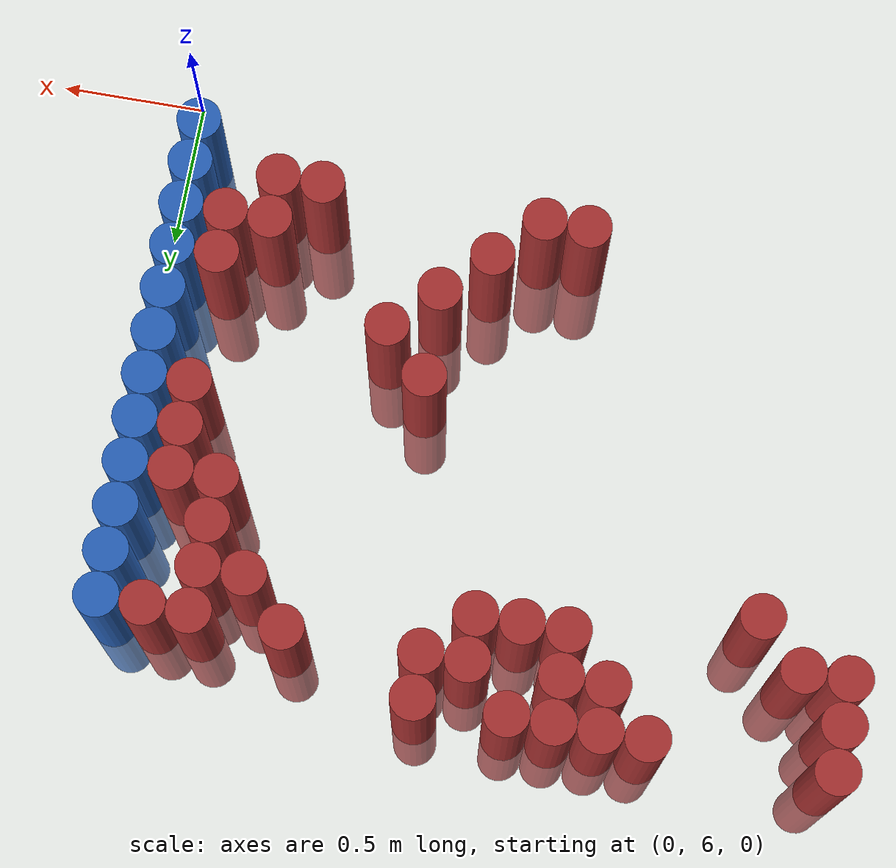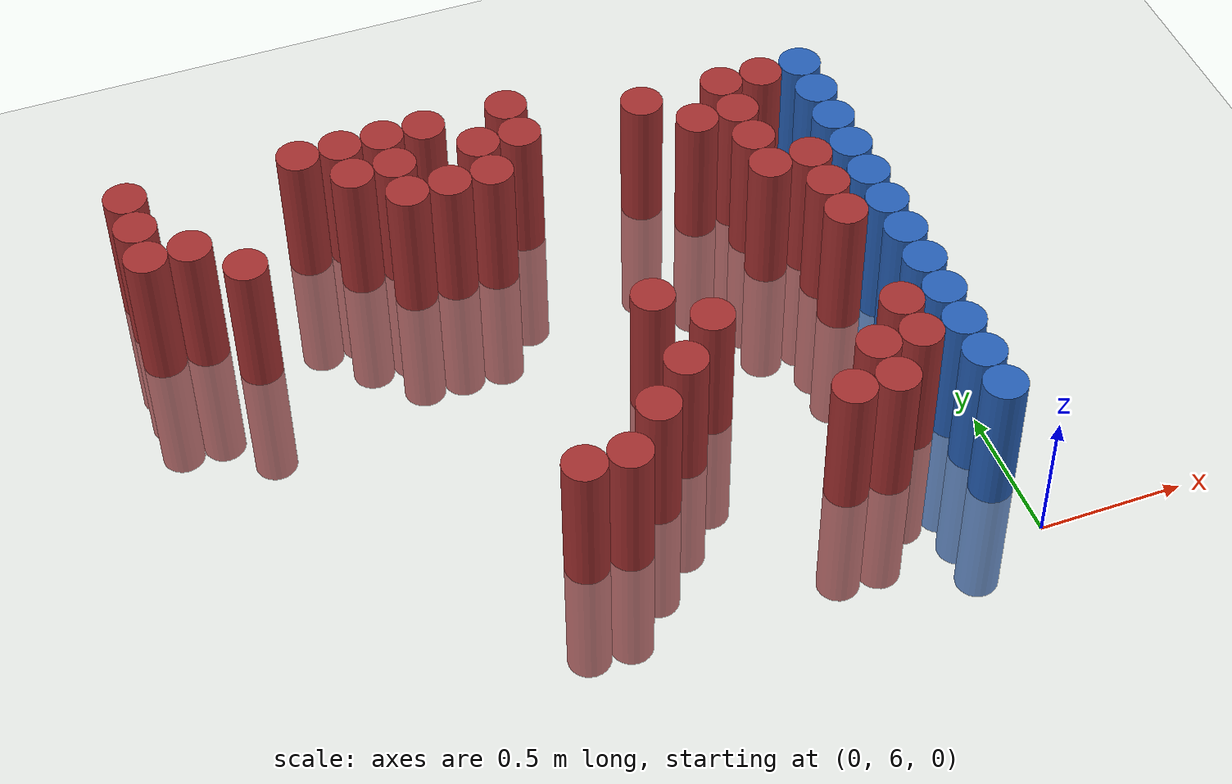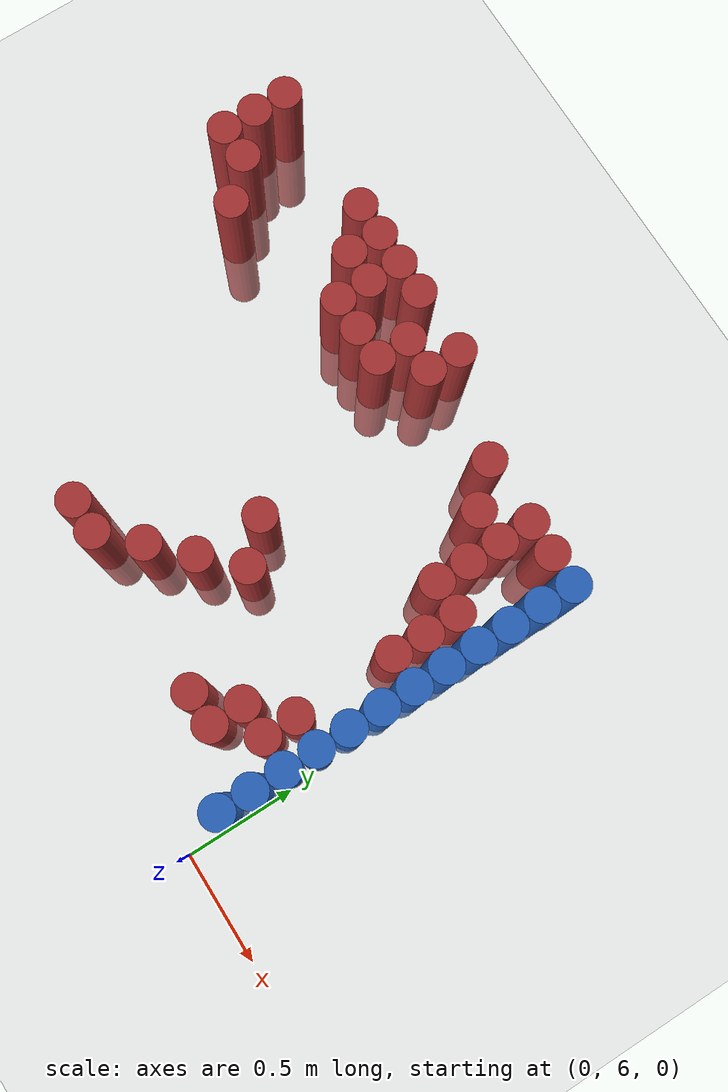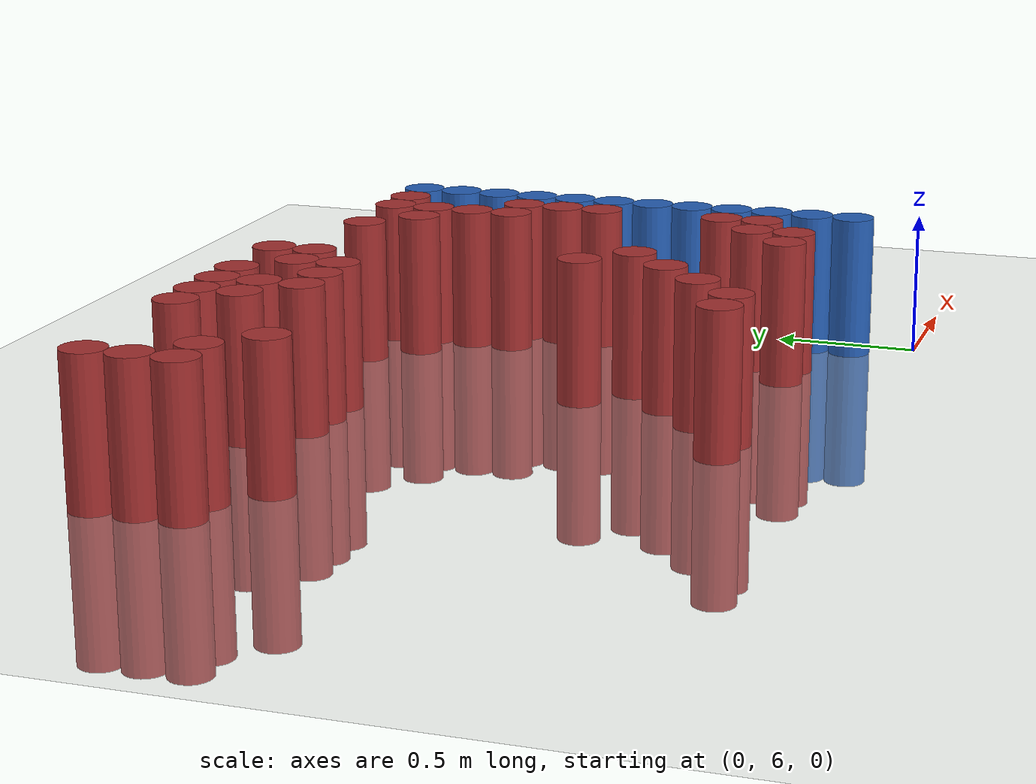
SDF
<sdf version="1.6">
 <world name="default">
  <model name="ground_plane">
   <static>1</static>
   <link name="link">
    <collision name="collision">
     <geometry><plane><normal>0 0 1</normal><size>100 100</size></plane></geometry>
     <surface><friction><ode><mu>100</mu><mu2>50</mu2></ode></friction></surface>
    </collision>
    <visual name="visual">
     <cast_shadows>0</cast_shadows>
     <geometry><plane><normal>0 0 1</normal><size>100 100</size></plane></geometry>
     <material>
      <script><uri>file://media/materials/scripts/gazebo.material</uri><name>Gazebo/Grey</name></script>
     </material>
    </visual>
   </link>
  </model>
  <model name="unit_cylinder_180">
   <static>1</static>
   <pose>-2.475000 7.725000 0.000000 0.000000 0.000000 0.000000</pose>
   <link name="link">
    <inertial>
     <mass>1</mass>
     <inertia><ixx>0.145833</ixx><ixy>0</ixy><ixz>0</ixz><iyy>0.145833</iyy><iyz>0</iyz><izz>0.125</izz></inertia>
    </inertial>
    <collision name="collision">
     <geometry><cylinder><radius>0.075000</radius><length>1</length></cylinder></geometry>
    </collision>
    <visual name="visual">
     <geometry><cylinder><radius>0.075000</radius><length>1</length></cylinder></geometry>
     <material>
      <ambient>0.648000 0.192000 0.192000 1</ambient>
      <diffuse>0.648000 0.192000 0.192000 1</diffuse>
     </material>
     <material>
      <script><name>Gazebo/Grey</name><uri>file://media/materials/scripts/gazebo.material</uri></script>
     </material>
    </visual>
   </link>
  </model>
  <model name="unit_cylinder_181">
   <static>1</static>
   <pose>-2.475000 7.875000 0.000000 0.000000 0.000000 0.000000</pose>
   <link name="link">
    <inertial>
     <mass>1</mass>
     <inertia><ixx>0.145833</ixx><ixy>0</ixy><ixz>0</ixz><iyy>0.145833</iyy><iyz>0</iyz><izz>0.125</izz></inertia>
    </inertial>
    <collision name="collision">
     <geometry><cylinder><radius>0.075000</radius><length>1</length></cylinder></geometry>
    </collision>
    <visual name="visual">
     <geometry><cylinder><radius>0.075000</radius><length>1</length></cylinder></geometry>
     <material>
      <ambient>0.648000 0.192000 0.192000 1</ambient>
      <diffuse>0.648000 0.192000 0.192000 1</diffuse>
     </material>
     <material>
      <script><name>Gazebo/Grey</name><uri>file://media/materials/scripts/gazebo.material</uri></script>
     </material>
    </visual>
   </link>
  </model>
  <model name="unit_cylinder_182">
   <static>1</static>
   <pose>-2.475000 8.025000 0.000000 0.000000 0.000000 0.000000</pose>
   <link name="link">
    <inertial>
     <mass>1</mass>
     <inertia><ixx>0.145833</ixx><ixy>0</ixy><ixz>0</ixz><iyy>0.145833</iyy><iyz>0</iyz><izz>0.125</izz></inertia>
    </inertial>
    <collision name="collision">
     <geometry><cylinder><radius>0.075000</radius><length>1</length></cylinder></geometry>
    </collision>
    <visual name="visual">
     <geometry><cylinder><radius>0.075000</radius><length>1</length></cylinder></geometry>
     <material>
      <ambient>0.648000 0.192000 0.192000 1</ambient>
      <diffuse>0.648000 0.192000 0.192000 1</diffuse>
     </material>
     <material>
      <script><name>Gazebo/Grey</name><uri>file://media/materials/scripts/gazebo.material</uri></script>
     </material>
    </visual>
   </link>
  </model>
  <model name="unit_cylinder_187">
   <static>1</static>
   <pose>-2.325000 7.725000 0.000000 0.000000 0.000000 0.000000</pose>
   <link name="link">
    <inertial>
     <mass>1</mass>
     <inertia><ixx>0.145833</ixx><ixy>0</ixy><ixz>0</ixz><iyy>0.145833</iyy><iyz>0</iyz><izz>0.125</izz></inertia>
    </inertial>
    <collision name="collision">
     <geometry><cylinder><radius>0.075000</radius><length>1</length></cylinder></geometry>
    </collision>
    <visual name="visual">
     <geometry><cylinder><radius>0.075000</radius><length>1</length></cylinder></geometry>
     <material>
      <ambient>0.648000 0.192000 0.192000 1</ambient>
      <diffuse>0.648000 0.192000 0.192000 1</diffuse>
     </material>
     <material>
      <script><name>Gazebo/Grey</name><uri>file://media/materials/scripts/gazebo.material</uri></script>
     </material>
    </visual>
   </link>
  </model>
  <model name="unit_cylinder_192">
   <static>1</static>
   <pose>-2.175000 7.575000 0.000000 0.000000 0.000000 0.000000</pose>
   <link name="link">
    <inertial>
     <mass>1</mass>
     <inertia><ixx>0.145833</ixx><ixy>0</ixy><ixz>0</ixz><iyy>0.145833</iyy><iyz>0</iyz><izz>0.125</izz></inertia>
    </inertial>
    <collision name="collision">
     <geometry><cylinder><radius>0.075000</radius><length>1</length></cylinder></geometry>
    </collision>
    <visual name="visual">
     <geometry><cylinder><radius>0.075000</radius><length>1</length></cylinder></geometry>
     <material>
      <ambient>0.648000 0.192000 0.192000 1</ambient>
      <diffuse>0.648000 0.192000 0.192000 1</diffuse>
     </material>
     <material>
      <script><name>Gazebo/Grey</name><uri>file://media/materials/scripts/gazebo.material</uri></script>
     </material>
    </visual>
   </link>
  </model>
  <model name="unit_cylinder_199">
   <static>1</static>
   <pose>-1.875000 8.025000 0.000000 0.000000 0.000000 0.000000</pose>
   <link name="link">
    <inertial>
     <mass>1</mass>
     <inertia><ixx>0.145833</ixx><ixy>0</ixy><ixz>0</ixz><iyy>0.145833</iyy><iyz>0</iyz><izz>0.125</izz></inertia>
    </inertial>
    <collision name="collision">
     <geometry><cylinder><radius>0.075000</radius><length>1</length></cylinder></geometry>
    </collision>
    <visual name="visual">
     <geometry><cylinder><radius>0.075000</radius><length>1</length></cylinder></geometry>
     <material>
      <ambient>0.648000 0.192000 0.192000 1</ambient>
      <diffuse>0.648000 0.192000 0.192000 1</diffuse>
     </material>
     <material>
      <script><name>Gazebo/Grey</name><uri>file://media/materials/scripts/gazebo.material</uri></script>
     </material>
    </visual>
   </link>
  </model>
  <model name="unit_cylinder_201">
   <static>1</static>
   <pose>-1.725000 7.875000 0.000000 0.000000 0.000000 0.000000</pose>
   <link name="link">
    <inertial>
     <mass>1</mass>
     <inertia><ixx>0.145833</ixx><ixy>0</ixy><ixz>0</ixz><iyy>0.145833</iyy><iyz>0</iyz><izz>0.125</izz></inertia>
    </inertial>
    <collision name="collision">
     <geometry><cylinder><radius>0.075000</radius><length>1</length></cylinder></geometry>
    </collision>
    <visual name="visual">
     <geometry><cylinder><radius>0.075000</radius><length>1</length></cylinder></geometry>
     <material>
      <ambient>0.648000 0.192000 0.192000 1</ambient>
      <diffuse>0.648000 0.192000 0.192000 1</diffuse>
     </material>
     <material>
      <script><name>Gazebo/Grey</name><uri>file://media/materials/scripts/gazebo.material</uri></script>
     </material>
    </visual>
   </link>
  </model>
  <model name="unit_cylinder_202">
   <static>1</static>
   <pose>-1.725000 8.025000 0.000000 0.000000 0.000000 0.000000</pose>
   <link name="link">
    <inertial>
     <mass>1</mass>
     <inertia><ixx>0.145833</ixx><ixy>0</ixy><ixz>0</ixz><iyy>0.145833</iyy><iyz>0</iyz><izz>0.125</izz></inertia>
    </inertial>
    <collision name="collision">
     <geometry><cylinder><radius>0.075000</radius><length>1</length></cylinder></geometry>
    </collision>
    <visual name="visual">
     <geometry><cylinder><radius>0.075000</radius><length>1</length></cylinder></geometry>
     <material>
      <ambient>0.648000 0.192000 0.192000 1</ambient>
      <diffuse>0.648000 0.192000 0.192000 1</diffuse>
     </material>
     <material>
      <script><name>Gazebo/Grey</name><uri>file://media/materials/scripts/gazebo.material</uri></script>
     </material>
    </visual>
   </link>
  </model>
  <model name="unit_cylinder_203">
   <static>1</static>
   <pose>-1.575000 7.725000 0.000000 0.000000 0.000000 0.000000</pose>
   <link name="link">
    <inertial>
     <mass>1</mass>
     <inertia><ixx>0.145833</ixx><ixy>0</ixy><ixz>0</ixz><iyy>0.145833</iyy><iyz>0</iyz><izz>0.125</izz></inertia>
    </inertial>
    <collision name="collision">
     <geometry><cylinder><radius>0.075000</radius><length>1</length></cylinder></geometry>
    </collision>
    <visual name="visual">
     <geometry><cylinder><radius>0.075000</radius><length>1</length></cylinder></geometry>
     <material>
      <ambient>0.648000 0.192000 0.192000 1</ambient>
      <diffuse>0.648000 0.192000 0.192000 1</diffuse>
     </material>
     <material>
      <script><name>Gazebo/Grey</name><uri>file://media/materials/scripts/gazebo.material</uri></script>
     </material>
    </visual>
   </link>
  </model>
  <model name="unit_cylinder_204">
   <static>1</static>
   <pose>-1.575000 7.875000 0.000000 0.000000 0.000000 0.000000</pose>
   <link name="link">
    <inertial>
     <mass>1</mass>
     <inertia><ixx>0.145833</ixx><ixy>0</ixy><ixz>0</ixz><iyy>0.145833</iyy><iyz>0</iyz><izz>0.125</izz></inertia>
    </inertial>
    <collision name="collision">
     <geometry><cylinder><radius>0.075000</radius><length>1</length></cylinder></geometry>
    </collision>
    <visual name="visual">
     <geometry><cylinder><radius>0.075000</radius><length>1</length></cylinder></geometry>
     <material>
      <ambient>0.648000 0.192000 0.192000 1</ambient>
      <diffuse>0.648000 0.192000 0.192000 1</diffuse>
     </material>
     <material>
      <script><name>Gazebo/Grey</name><uri>file://media/materials/scripts/gazebo.material</uri></script>
     </material>
    </visual>
   </link>
  </model>
  <model name="unit_cylinder_205">
   <static>1</static>
   <pose>-1.575000 8.025000 0.000000 0.000000 0.000000 0.000000</pose>
   <link name="link">
    <inertial>
     <mass>1</mass>
     <inertia><ixx>0.145833</ixx><ixy>0</ixy><ixz>0</ixz><iyy>0.145833</iyy><iyz>0</iyz><izz>0.125</izz></inertia>
    </inertial>
    <collision name="collision">
     <geometry><cylinder><radius>0.075000</radius><length>1</length></cylinder></geometry>
    </collision>
    <visual name="visual">
     <geometry><cylinder><radius>0.075000</radius><length>1</length></cylinder></geometry>
     <material>
      <ambient>0.648000 0.192000 0.192000 1</ambient>
      <diffuse>0.648000 0.192000 0.192000 1</diffuse>
     </material>
     <material>
      <script><name>Gazebo/Grey</name><uri>file://media/materials/scripts/gazebo.material</uri></script>
     </material>
    </visual>
   </link>
  </model>
  <model name="unit_cylinder_206">
   <static>1</static>
   <pose>-1.425000 6.375000 0.000000 0.000000 0.000000 0.000000</pose>
   <link name="link">
    <inertial>
     <mass>1</mass>
     <inertia><ixx>0.145833</ixx><ixy>0</ixy><ixz>0</ixz><iyy>0.145833</iyy><iyz>0</iyz><izz>0.125</izz></inertia>
    </inertial>
    <collision name="collision">
     <geometry><cylinder><radius>0.075000</radius><length>1</length></cylinder></geometry>
    </collision>
    <visual name="visual">
     <geometry><cylinder><radius>0.075000</radius><length>1</length></cylinder></geometry>
     <material>
      <ambient>0.648000 0.192000 0.192000 1</ambient>
      <diffuse>0.648000 0.192000 0.192000 1</diffuse>
     </material>
     <material>
      <script><name>Gazebo/Grey</name><uri>file://media/materials/scripts/gazebo.material</uri></script>
     </material>
    </visual>
   </link>
  </model>
  <model name="unit_cylinder_207">
   <static>1</static>
   <pose>-1.425000 7.725000 0.000000 0.000000 0.000000 0.000000</pose>
   <link name="link">
    <inertial>
     <mass>1</mass>
     <inertia><ixx>0.145833</ixx><ixy>0</ixy><ixz>0</ixz><iyy>0.145833</iyy><iyz>0</iyz><izz>0.125</izz></inertia>
    </inertial>
    <collision name="collision">
     <geometry><cylinder><radius>0.075000</radius><length>1</length></cylinder></geometry>
    </collision>
    <visual name="visual">
     <geometry><cylinder><radius>0.075000</radius><length>1</length></cylinder></geometry>
     <material>
      <ambient>0.648000 0.192000 0.192000 1</ambient>
      <diffuse>0.648000 0.192000 0.192000 1</diffuse>
     </material>
     <material>
      <script><name>Gazebo/Grey</name><uri>file://media/materials/scripts/gazebo.material</uri></script>
     </material>
    </visual>
   </link>
  </model>
  <model name="unit_cylinder_208">
   <static>1</static>
   <pose>-1.425000 8.025000 0.000000 0.000000 0.000000 0.000000</pose>
   <link name="link">
    <inertial>
     <mass>1</mass>
     <inertia><ixx>0.145833</ixx><ixy>0</ixy><ixz>0</ixz><iyy>0.145833</iyy><iyz>0</iyz><izz>0.125</izz></inertia>
    </inertial>
    <collision name="collision">
     <geometry><cylinder><radius>0.075000</radius><length>1</length></cylinder></geometry>
    </collision>
    <visual name="visual">
     <geometry><cylinder><radius>0.075000</radius><length>1</length></cylinder></geometry>
     <material>
      <ambient>0.648000 0.192000 0.192000 1</ambient>
      <diffuse>0.648000 0.192000 0.192000 1</diffuse>
     </material>
     <material>
      <script><name>Gazebo/Grey</name><uri>file://media/materials/scripts/gazebo.material</uri></script>
     </material>
    </visual>
   </link>
  </model>
  <model name="unit_cylinder_212">
   <static>1</static>
   <pose>-1.275000 6.375000 0.000000 0.000000 0.000000 0.000000</pose>
   <link name="link">
    <inertial>
     <mass>1</mass>
     <inertia><ixx>0.145833</ixx><ixy>0</ixy><ixz>0</ixz><iyy>0.145833</iyy><iyz>0</iyz><izz>0.125</izz></inertia>
    </inertial>
    <collision name="collision">
     <geometry><cylinder><radius>0.075000</radius><length>1</length></cylinder></geometry>
    </collision>
    <visual name="visual">
     <geometry><cylinder><radius>0.075000</radius><length>1</length></cylinder></geometry>
     <material>
      <ambient>0.648000 0.192000 0.192000 1</ambient>
      <diffuse>0.648000 0.192000 0.192000 1</diffuse>
     </material>
     <material>
      <script><name>Gazebo/Grey</name><uri>file://media/materials/scripts/gazebo.material</uri></script>
     </material>
    </visual>
   </link>
  </model>
  <model name="unit_cylinder_213">
   <static>1</static>
   <pose>-1.275000 7.725000 0.000000 0.000000 0.000000 0.000000</pose>
   <link name="link">
    <inertial>
     <mass>1</mass>
     <inertia><ixx>0.145833</ixx><ixy>0</ixy><ixz>0</ixz><iyy>0.145833</iyy><iyz>0</iyz><izz>0.125</izz></inertia>
    </inertial>
    <collision name="collision">
     <geometry><cylinder><radius>0.075000</radius><length>1</length></cylinder></geometry>
    </collision>
    <visual name="visual">
     <geometry><cylinder><radius>0.075000</radius><length>1</length></cylinder></geometry>
     <material>
      <ambient>0.648000 0.192000 0.192000 1</ambient>
      <diffuse>0.648000 0.192000 0.192000 1</diffuse>
     </material>
     <material>
      <script><name>Gazebo/Grey</name><uri>file://media/materials/scripts/gazebo.material</uri></script>
     </material>
    </visual>
   </link>
  </model>
  <model name="unit_cylinder_214">
   <static>1</static>
   <pose>-1.275000 7.875000 0.000000 0.000000 0.000000 0.000000</pose>
   <link name="link">
    <inertial>
     <mass>1</mass>
     <inertia><ixx>0.145833</ixx><ixy>0</ixy><ixz>0</ixz><iyy>0.145833</iyy><iyz>0</iyz><izz>0.125</izz></inertia>
    </inertial>
    <collision name="collision">
     <geometry><cylinder><radius>0.075000</radius><length>1</length></cylinder></geometry>
    </collision>
    <visual name="visual">
     <geometry><cylinder><radius>0.075000</radius><length>1</length></cylinder></geometry>
     <material>
      <ambient>0.648000 0.192000 0.192000 1</ambient>
      <diffuse>0.648000 0.192000 0.192000 1</diffuse>
     </material>
     <material>
      <script><name>Gazebo/Grey</name><uri>file://media/materials/scripts/gazebo.material</uri></script>
     </material>
    </visual>
   </link>
  </model>
  <model name="unit_cylinder_217">
   <static>1</static>
   <pose>-1.125000 6.525000 0.000000 0.000000 0.000000 0.000000</pose>
   <link name="link">
    <inertial>
     <mass>1</mass>
     <inertia><ixx>0.145833</ixx><ixy>0</ixy><ixz>0</ixz><iyy>0.145833</iyy><iyz>0</iyz><izz>0.125</izz></inertia>
    </inertial>
    <collision name="collision">
     <geometry><cylinder><radius>0.075000</radius><length>1</length></cylinder></geometry>
    </collision>
    <visual name="visual">
     <geometry><cylinder><radius>0.075000</radius><length>1</length></cylinder></geometry>
     <material>
      <ambient>0.648000 0.192000 0.192000 1</ambient>
      <diffuse>0.648000 0.192000 0.192000 1</diffuse>
     </material>
     <material>
      <script><name>Gazebo/Grey</name><uri>file://media/materials/scripts/gazebo.material</uri></script>
     </material>
    </visual>
   </link>
  </model>
  <model name="unit_cylinder_218">
   <static>1</static>
   <pose>-1.125000 7.875000 0.000000 0.000000 0.000000 0.000000</pose>
   <link name="link">
    <inertial>
     <mass>1</mass>
     <inertia><ixx>0.145833</ixx><ixy>0</ixy><ixz>0</ixz><iyy>0.145833</iyy><iyz>0</iyz><izz>0.125</izz></inertia>
    </inertial>
    <collision name="collision">
     <geometry><cylinder><radius>0.075000</radius><length>1</length></cylinder></geometry>
    </collision>
    <visual name="visual">
     <geometry><cylinder><radius>0.075000</radius><length>1</length></cylinder></geometry>
     <material>
      <ambient>0.648000 0.192000 0.192000 1</ambient>
      <diffuse>0.648000 0.192000 0.192000 1</diffuse>
     </material>
     <material>
      <script><name>Gazebo/Grey</name><uri>file://media/materials/scripts/gazebo.material</uri></script>
     </material>
    </visual>
   </link>
  </model>
  <model name="unit_cylinder_219">
   <static>1</static>
   <pose>-1.125000 8.025000 0.000000 0.000000 0.000000 0.000000</pose>
   <link name="link">
    <inertial>
     <mass>1</mass>
     <inertia><ixx>0.145833</ixx><ixy>0</ixy><ixz>0</ixz><iyy>0.145833</iyy><iyz>0</iyz><izz>0.125</izz></inertia>
    </inertial>
    <collision name="collision">
     <geometry><cylinder><radius>0.075000</radius><length>1</length></cylinder></geometry>
    </collision>
    <visual name="visual">
     <geometry><cylinder><radius>0.075000</radius><length>1</length></cylinder></geometry>
     <material>
      <ambient>0.648000 0.192000 0.192000 1</ambient>
      <diffuse>0.648000 0.192000 0.192000 1</diffuse>
     </material>
     <material>
      <script><name>Gazebo/Grey</name><uri>file://media/materials/scripts/gazebo.material</uri></script>
     </material>
    </visual>
   </link>
  </model>
  <model name="unit_cylinder_222">
   <static>1</static>
   <pose>-0.975000 6.675000 0.000000 0.000000 0.000000 0.000000</pose>
   <link name="link">
    <inertial>
     <mass>1</mass>
     <inertia><ixx>0.145833</ixx><ixy>0</ixy><ixz>0</ixz><iyy>0.145833</iyy><iyz>0</iyz><izz>0.125</izz></inertia>
    </inertial>
    <collision name="collision">
     <geometry><cylinder><radius>0.075000</radius><length>1</length></cylinder></geometry>
    </collision>
    <visual name="visual">
     <geometry><cylinder><radius>0.075000</radius><length>1</length></cylinder></geometry>
     <material>
      <ambient>0.648000 0.192000 0.192000 1</ambient>
      <diffuse>0.648000 0.192000 0.192000 1</diffuse>
     </material>
     <material>
      <script><name>Gazebo/Grey</name><uri>file://media/materials/scripts/gazebo.material</uri></script>
     </material>
    </visual>
   </link>
  </model>
  <model name="unit_cylinder_223">
   <static>1</static>
   <pose>-0.975000 6.975000 0.000000 0.000000 0.000000 0.000000</pose>
   <link name="link">
    <inertial>
     <mass>1</mass>
     <inertia><ixx>0.145833</ixx><ixy>0</ixy><ixz>0</ixz><iyy>0.145833</iyy><iyz>0</iyz><izz>0.125</izz></inertia>
    </inertial>
    <collision name="collision">
     <geometry><cylinder><radius>0.075000</radius><length>1</length></cylinder></geometry>
    </collision>
    <visual name="visual">
     <geometry><cylinder><radius>0.075000</radius><length>1</length></cylinder></geometry>
     <material>
      <ambient>0.648000 0.192000 0.192000 1</ambient>
      <diffuse>0.648000 0.192000 0.192000 1</diffuse>
     </material>
     <material>
      <script><name>Gazebo/Grey</name><uri>file://media/materials/scripts/gazebo.material</uri></script>
     </material>
    </visual>
   </link>
  </model>
  <model name="unit_cylinder_227">
   <static>1</static>
   <pose>-0.825000 6.825000 0.000000 0.000000 0.000000 0.000000</pose>
   <link name="link">
    <inertial>
     <mass>1</mass>
     <inertia><ixx>0.145833</ixx><ixy>0</ixy><ixz>0</ixz><iyy>0.145833</iyy><iyz>0</iyz><izz>0.125</izz></inertia>
    </inertial>
    <collision name="collision">
     <geometry><cylinder><radius>0.075000</radius><length>1</length></cylinder></geometry>
    </collision>
    <visual name="visual">
     <geometry><cylinder><radius>0.075000</radius><length>1</length></cylinder></geometry>
     <material>
      <ambient>0.648000 0.192000 0.192000 1</ambient>
      <diffuse>0.648000 0.192000 0.192000 1</diffuse>
     </material>
     <material>
      <script><name>Gazebo/Grey</name><uri>file://media/materials/scripts/gazebo.material</uri></script>
     </material>
    </visual>
   </link>
  </model>
  <model name="unit_cylinder_232">
   <static>1</static>
   <pose>-0.675000 7.875000 0.000000 0.000000 0.000000 0.000000</pose>
   <link name="link">
    <inertial>
     <mass>1</mass>
     <inertia><ixx>0.145833</ixx><ixy>0</ixy><ixz>0</ixz><iyy>0.145833</iyy><iyz>0</iyz><izz>0.125</izz></inertia>
    </inertial>
    <collision name="collision">
     <geometry><cylinder><radius>0.075000</radius><length>1</length></cylinder></geometry>
    </collision>
    <visual name="visual">
     <geometry><cylinder><radius>0.075000</radius><length>1</length></cylinder></geometry>
     <material>
      <ambient>0.648000 0.192000 0.192000 1</ambient>
      <diffuse>0.648000 0.192000 0.192000 1</diffuse>
     </material>
     <material>
      <script><name>Gazebo/Grey</name><uri>file://media/materials/scripts/gazebo.material</uri></script>
     </material>
    </visual>
   </link>
  </model>
  <model name="unit_cylinder_238">
   <static>1</static>
   <pose>-0.525000 6.375000 0.000000 0.000000 0.000000 0.000000</pose>
   <link name="link">
    <inertial>
     <mass>1</mass>
     <inertia><ixx>0.145833</ixx><ixy>0</ixy><ixz>0</ixz><iyy>0.145833</iyy><iyz>0</iyz><izz>0.125</izz></inertia>
    </inertial>
    <collision name="collision">
     <geometry><cylinder><radius>0.075000</radius><length>1</length></cylinder></geometry>
    </collision>
    <visual name="visual">
     <geometry><cylinder><radius>0.075000</radius><length>1</length></cylinder></geometry>
     <material>
      <ambient>0.648000 0.192000 0.192000 1</ambient>
      <diffuse>0.648000 0.192000 0.192000 1</diffuse>
     </material>
     <material>
      <script><name>Gazebo/Grey</name><uri>file://media/materials/scripts/gazebo.material</uri></script>
     </material>
    </visual>
   </link>
  </model>
  <model name="unit_cylinder_239">
   <static>1</static>
   <pose>-0.525000 7.725000 0.000000 0.000000 0.000000 0.000000</pose>
   <link name="link">
    <inertial>
     <mass>1</mass>
     <inertia><ixx>0.145833</ixx><ixy>0</ixy><ixz>0</ixz><iyy>0.145833</iyy><iyz>0</iyz><izz>0.125</izz></inertia>
    </inertial>
    <collision name="collision">
     <geometry><cylinder><radius>0.075000</radius><length>1</length></cylinder></geometry>
    </collision>
    <visual name="visual">
     <geometry><cylinder><radius>0.075000</radius><length>1</length></cylinder></geometry>
     <material>
      <ambient>0.648000 0.192000 0.192000 1</ambient>
      <diffuse>0.648000 0.192000 0.192000 1</diffuse>
     </material>
     <material>
      <script><name>Gazebo/Grey</name><uri>file://media/materials/scripts/gazebo.material</uri></script>
     </material>
    </visual>
   </link>
  </model>
  <model name="unit_cylinder_242">
   <static>1</static>
   <pose>-0.375000 6.375000 0.000000 0.000000 0.000000 0.000000</pose>
   <link name="link">
    <inertial>
     <mass>1</mass>
     <inertia><ixx>0.145833</ixx><ixy>0</ixy><ixz>0</ixz><iyy>0.145833</iyy><iyz>0</iyz><izz>0.125</izz></inertia>
    </inertial>
    <collision name="collision">
     <geometry><cylinder><radius>0.075000</radius><length>1</length></cylinder></geometry>
    </collision>
    <visual name="visual">
     <geometry><cylinder><radius>0.075000</radius><length>1</length></cylinder></geometry>
     <material>
      <ambient>0.648000 0.192000 0.192000 1</ambient>
      <diffuse>0.648000 0.192000 0.192000 1</diffuse>
     </material>
     <material>
      <script><name>Gazebo/Grey</name><uri>file://media/materials/scripts/gazebo.material</uri></script>
     </material>
    </visual>
   </link>
  </model>
  <model name="unit_cylinder_243">
   <static>1</static>
   <pose>-0.375000 6.525000 0.000000 0.000000 0.000000 0.000000</pose>
   <link name="link">
    <inertial>
     <mass>1</mass>
     <inertia><ixx>0.145833</ixx><ixy>0</ixy><ixz>0</ixz><iyy>0.145833</iyy><iyz>0</iyz><izz>0.125</izz></inertia>
    </inertial>
    <collision name="collision">
     <geometry><cylinder><radius>0.075000</radius><length>1</length></cylinder></geometry>
    </collision>
    <visual name="visual">
     <geometry><cylinder><radius>0.075000</radius><length>1</length></cylinder></geometry>
     <material>
      <ambient>0.648000 0.192000 0.192000 1</ambient>
      <diffuse>0.648000 0.192000 0.192000 1</diffuse>
     </material>
     <material>
      <script><name>Gazebo/Grey</name><uri>file://media/materials/scripts/gazebo.material</uri></script>
     </material>
    </visual>
   </link>
  </model>
  <model name="unit_cylinder_244">
   <static>1</static>
   <pose>-0.375000 7.425000 0.000000 0.000000 0.000000 0.000000</pose>
   <link name="link">
    <inertial>
     <mass>1</mass>
     <inertia><ixx>0.145833</ixx><ixy>0</ixy><ixz>0</ixz><iyy>0.145833</iyy><iyz>0</iyz><izz>0.125</izz></inertia>
    </inertial>
    <collision name="collision">
     <geometry><cylinder><radius>0.075000</radius><length>1</length></cylinder></geometry>
    </collision>
    <visual name="visual">
     <geometry><cylinder><radius>0.075000</radius><length>1</length></cylinder></geometry>
     <material>
      <ambient>0.648000 0.192000 0.192000 1</ambient>
      <diffuse>0.648000 0.192000 0.192000 1</diffuse>
     </material>
     <material>
      <script><name>Gazebo/Grey</name><uri>file://media/materials/scripts/gazebo.material</uri></script>
     </material>
    </visual>
   </link>
  </model>
  <model name="unit_cylinder_245">
   <static>1</static>
   <pose>-0.375000 7.575000 0.000000 0.000000 0.000000 0.000000</pose>
   <link name="link">
    <inertial>
     <mass>1</mass>
     <inertia><ixx>0.145833</ixx><ixy>0</ixy><ixz>0</ixz><iyy>0.145833</iyy><iyz>0</iyz><izz>0.125</izz></inertia>
    </inertial>
    <collision name="collision">
     <geometry><cylinder><radius>0.075000</radius><length>1</length></cylinder></geometry>
    </collision>
    <visual name="visual">
     <geometry><cylinder><radius>0.075000</radius><length>1</length></cylinder></geometry>
     <material>
      <ambient>0.648000 0.192000 0.192000 1</ambient>
      <diffuse>0.648000 0.192000 0.192000 1</diffuse>
     </material>
     <material>
      <script><name>Gazebo/Grey</name><uri>file://media/materials/scripts/gazebo.material</uri></script>
     </material>
    </visual>
   </link>
  </model>
  <model name="unit_cylinder_246">
   <static>1</static>
   <pose>-0.375000 7.725000 0.000000 0.000000 0.000000 0.000000</pose>
   <link name="link">
    <inertial>
     <mass>1</mass>
     <inertia><ixx>0.145833</ixx><ixy>0</ixy><ixz>0</ixz><iyy>0.145833</iyy><iyz>0</iyz><izz>0.125</izz></inertia>
    </inertial>
    <collision name="collision">
     <geometry><cylinder><radius>0.075000</radius><length>1</length></cylinder></geometry>
    </collision>
    <visual name="visual">
     <geometry><cylinder><radius>0.075000</radius><length>1</length></cylinder></geometry>
     <material>
      <ambient>0.648000 0.192000 0.192000 1</ambient>
      <diffuse>0.648000 0.192000 0.192000 1</diffuse>
     </material>
     <material>
      <script><name>Gazebo/Grey</name><uri>file://media/materials/scripts/gazebo.material</uri></script>
     </material>
    </visual>
   </link>
  </model>
  <model name="unit_cylinder_247">
   <static>1</static>
   <pose>-0.375000 7.875000 0.000000 0.000000 0.000000 0.000000</pose>
   <link name="link">
    <inertial>
     <mass>1</mass>
     <inertia><ixx>0.145833</ixx><ixy>0</ixy><ixz>0</ixz><iyy>0.145833</iyy><iyz>0</iyz><izz>0.125</izz></inertia>
    </inertial>
    <collision name="collision">
     <geometry><cylinder><radius>0.075000</radius><length>1</length></cylinder></geometry>
    </collision>
    <visual name="visual">
     <geometry><cylinder><radius>0.075000</radius><length>1</length></cylinder></geometry>
     <material>
      <ambient>0.648000 0.192000 0.192000 1</ambient>
      <diffuse>0.648000 0.192000 0.192000 1</diffuse>
     </material>
     <material>
      <script><name>Gazebo/Grey</name><uri>file://media/materials/scripts/gazebo.material</uri></script>
     </material>
    </visual>
   </link>
  </model>
  <model name="unit_cylinder_255">
   <static>1</static>
   <pose>-0.225000 6.525000 0.000000 0.000000 0.000000 0.000000</pose>
   <link name="link">
    <inertial>
     <mass>1</mass>
     <inertia><ixx>0.145833</ixx><ixy>0</ixy><ixz>0</ixz><iyy>0.145833</iyy><iyz>0</iyz><izz>0.125</izz></inertia>
    </inertial>
    <collision name="collision">
     <geometry><cylinder><radius>0.075000</radius><length>1</length></cylinder></geometry>
    </collision>
    <visual name="visual">
     <geometry><cylinder><radius>0.075000</radius><length>1</length></cylinder></geometry>
     <material>
      <ambient>0.648000 0.192000 0.192000 1</ambient>
      <diffuse>0.648000 0.192000 0.192000 1</diffuse>
     </material>
     <material>
      <script><name>Gazebo/Grey</name><uri>file://media/materials/scripts/gazebo.material</uri></script>
     </material>
    </visual>
   </link>
  </model>
  <model name="unit_cylinder_256">
   <static>1</static>
   <pose>-0.225000 6.675000 0.000000 0.000000 0.000000 0.000000</pose>
   <link name="link">
    <inertial>
     <mass>1</mass>
     <inertia><ixx>0.145833</ixx><ixy>0</ixy><ixz>0</ixz><iyy>0.145833</iyy><iyz>0</iyz><izz>0.125</izz></inertia>
    </inertial>
    <collision name="collision">
     <geometry><cylinder><radius>0.075000</radius><length>1</length></cylinder></geometry>
    </collision>
    <visual name="visual">
     <geometry><cylinder><radius>0.075000</radius><length>1</length></cylinder></geometry>
     <material>
      <ambient>0.648000 0.192000 0.192000 1</ambient>
      <diffuse>0.648000 0.192000 0.192000 1</diffuse>
     </material>
     <material>
      <script><name>Gazebo/Grey</name><uri>file://media/materials/scripts/gazebo.material</uri></script>
     </material>
    </visual>
   </link>
  </model>
  <model name="unit_cylinder_257">
   <static>1</static>
   <pose>-0.225000 7.125000 0.000000 0.000000 0.000000 0.000000</pose>
   <link name="link">
    <inertial>
     <mass>1</mass>
     <inertia><ixx>0.145833</ixx><ixy>0</ixy><ixz>0</ixz><iyy>0.145833</iyy><iyz>0</iyz><izz>0.125</izz></inertia>
    </inertial>
    <collision name="collision">
     <geometry><cylinder><radius>0.075000</radius><length>1</length></cylinder></geometry>
    </collision>
    <visual name="visual">
     <geometry><cylinder><radius>0.075000</radius><length>1</length></cylinder></geometry>
     <material>
      <ambient>0.648000 0.192000 0.192000 1</ambient>
      <diffuse>0.648000 0.192000 0.192000 1</diffuse>
     </material>
     <material>
      <script><name>Gazebo/Grey</name><uri>file://media/materials/scripts/gazebo.material</uri></script>
     </material>
    </visual>
   </link>
  </model>
  <model name="unit_cylinder_258">
   <static>1</static>
   <pose>-0.225000 7.275000 0.000000 0.000000 0.000000 0.000000</pose>
   <link name="link">
    <inertial>
     <mass>1</mass>
     <inertia><ixx>0.145833</ixx><ixy>0</ixy><ixz>0</ixz><iyy>0.145833</iyy><iyz>0</iyz><izz>0.125</izz></inertia>
    </inertial>
    <collision name="collision">
     <geometry><cylinder><radius>0.075000</radius><length>1</length></cylinder></geometry>
    </collision>
    <visual name="visual">
     <geometry><cylinder><radius>0.075000</radius><length>1</length></cylinder></geometry>
     <material>
      <ambient>0.648000 0.192000 0.192000 1</ambient>
      <diffuse>0.648000 0.192000 0.192000 1</diffuse>
     </material>
     <material>
      <script><name>Gazebo/Grey</name><uri>file://media/materials/scripts/gazebo.material</uri></script>
     </material>
    </visual>
   </link>
  </model>
  <model name="unit_cylinder_259">
   <static>1</static>
   <pose>-0.225000 7.425000 0.000000 0.000000 0.000000 0.000000</pose>
   <link name="link">
    <inertial>
     <mass>1</mass>
     <inertia><ixx>0.145833</ixx><ixy>0</ixy><ixz>0</ixz><iyy>0.145833</iyy><iyz>0</iyz><izz>0.125</izz></inertia>
    </inertial>
    <collision name="collision">
     <geometry><cylinder><radius>0.075000</radius><length>1</length></cylinder></geometry>
    </collision>
    <visual name="visual">
     <geometry><cylinder><radius>0.075000</radius><length>1</length></cylinder></geometry>
     <material>
      <ambient>0.648000 0.192000 0.192000 1</ambient>
      <diffuse>0.648000 0.192000 0.192000 1</diffuse>
     </material>
     <material>
      <script><name>Gazebo/Grey</name><uri>file://media/materials/scripts/gazebo.material</uri></script>
     </material>
    </visual>
   </link>
  </model>
  <model name="unit_cylinder_260">
   <static>1</static>
   <pose>-0.225000 7.875000 0.000000 0.000000 0.000000 0.000000</pose>
   <link name="link">
    <inertial>
     <mass>1</mass>
     <inertia><ixx>0.145833</ixx><ixy>0</ixy><ixz>0</ixz><iyy>0.145833</iyy><iyz>0</iyz><izz>0.125</izz></inertia>
    </inertial>
    <collision name="collision">
     <geometry><cylinder><radius>0.075000</radius><length>1</length></cylinder></geometry>
    </collision>
    <visual name="visual">
     <geometry><cylinder><radius>0.075000</radius><length>1</length></cylinder></geometry>
     <material>
      <ambient>0.648000 0.192000 0.192000 1</ambient>
      <diffuse>0.648000 0.192000 0.192000 1</diffuse>
     </material>
     <material>
      <script><name>Gazebo/Grey</name><uri>file://media/materials/scripts/gazebo.material</uri></script>
     </material>
    </visual>
   </link>
  </model>
  <model name="unit_cylinder_277">
   <static>1</static>
   <pose>-0.075000 6.225000 0.000000 0.000000 0.000000 0.000000</pose>
   <link name="link">
    <inertial>
     <mass>1</mass>
     <inertia><ixx>0.145833</ixx><ixy>0</ixy><ixz>0</ixz><iyy>0.145833</iyy><iyz>0</iyz><izz>0.125</izz></inertia>
    </inertial>
    <collision name="collision">
     <geometry><cylinder><radius>0.075000</radius><length>1</length></cylinder></geometry>
    </collision>
    <visual name="visual">
     <geometry><cylinder><radius>0.075000</radius><length>1</length></cylinder></geometry>
     <material>
      <ambient>0.152000 0.379000 0.720000 1</ambient>
      <diffuse>0.152000 0.379000 0.720000 1</diffuse>
     </material>
     <material>
      <script><name>Gazebo/Grey</name><uri>file://media/materials/scripts/gazebo.material</uri></script>
     </material>
    </visual>
   </link>
  </model>
  <model name="unit_cylinder_278">
   <static>1</static>
   <pose>-0.075000 6.375000 0.000000 0.000000 0.000000 0.000000</pose>
   <link name="link">
    <inertial>
     <mass>1</mass>
     <inertia><ixx>0.145833</ixx><ixy>0</ixy><ixz>0</ixz><iyy>0.145833</iyy><iyz>0</iyz><izz>0.125</izz></inertia>
    </inertial>
    <collision name="collision">
     <geometry><cylinder><radius>0.075000</radius><length>1</length></cylinder></geometry>
    </collision>
    <visual name="visual">
     <geometry><cylinder><radius>0.075000</radius><length>1</length></cylinder></geometry>
     <material>
      <ambient>0.152000 0.379000 0.720000 1</ambient>
      <diffuse>0.152000 0.379000 0.720000 1</diffuse>
     </material>
     <material>
      <script><name>Gazebo/Grey</name><uri>file://media/materials/scripts/gazebo.material</uri></script>
     </material>
    </visual>
   </link>
  </model>
  <model name="unit_cylinder_279">
   <static>1</static>
   <pose>-0.075000 6.525000 0.000000 0.000000 0.000000 0.000000</pose>
   <link name="link">
    <inertial>
     <mass>1</mass>
     <inertia><ixx>0.145833</ixx><ixy>0</ixy><ixz>0</ixz><iyy>0.145833</iyy><iyz>0</iyz><izz>0.125</izz></inertia>
    </inertial>
    <collision name="collision">
     <geometry><cylinder><radius>0.075000</radius><length>1</length></cylinder></geometry>
    </collision>
    <visual name="visual">
     <geometry><cylinder><radius>0.075000</radius><length>1</length></cylinder></geometry>
     <material>
      <ambient>0.152000 0.379000 0.720000 1</ambient>
      <diffuse>0.152000 0.379000 0.720000 1</diffuse>
     </material>
     <material>
      <script><name>Gazebo/Grey</name><uri>file://media/materials/scripts/gazebo.material</uri></script>
     </material>
    </visual>
   </link>
  </model>
  <model name="unit_cylinder_280">
   <static>1</static>
   <pose>-0.075000 6.675000 0.000000 0.000000 0.000000 0.000000</pose>
   <link name="link">
    <inertial>
     <mass>1</mass>
     <inertia><ixx>0.145833</ixx><ixy>0</ixy><ixz>0</ixz><iyy>0.145833</iyy><iyz>0</iyz><izz>0.125</izz></inertia>
    </inertial>
    <collision name="collision">
     <geometry><cylinder><radius>0.075000</radius><length>1</length></cylinder></geometry>
    </collision>
    <visual name="visual">
     <geometry><cylinder><radius>0.075000</radius><length>1</length></cylinder></geometry>
     <material>
      <ambient>0.152000 0.379000 0.720000 1</ambient>
      <diffuse>0.152000 0.379000 0.720000 1</diffuse>
     </material>
     <material>
      <script><name>Gazebo/Grey</name><uri>file://media/materials/scripts/gazebo.material</uri></script>
     </material>
    </visual>
   </link>
  </model>
  <model name="unit_cylinder_281">
   <static>1</static>
   <pose>-0.075000 6.825000 0.000000 0.000000 0.000000 0.000000</pose>
   <link name="link">
    <inertial>
     <mass>1</mass>
     <inertia><ixx>0.145833</ixx><ixy>0</ixy><ixz>0</ixz><iyy>0.145833</iyy><iyz>0</iyz><izz>0.125</izz></inertia>
    </inertial>
    <collision name="collision">
     <geometry><cylinder><radius>0.075000</radius><length>1</length></cylinder></geometry>
    </collision>
    <visual name="visual">
     <geometry><cylinder><radius>0.075000</radius><length>1</length></cylinder></geometry>
     <material>
      <ambient>0.152000 0.379000 0.720000 1</ambient>
      <diffuse>0.152000 0.379000 0.720000 1</diffuse>
     </material>
     <material>
      <script><name>Gazebo/Grey</name><uri>file://media/materials/scripts/gazebo.material</uri></script>
     </material>
    </visual>
   </link>
  </model>
  <model name="unit_cylinder_282">
   <static>1</static>
   <pose>-0.075000 6.975000 0.000000 0.000000 0.000000 0.000000</pose>
   <link name="link">
    <inertial>
     <mass>1</mass>
     <inertia><ixx>0.145833</ixx><ixy>0</ixy><ixz>0</ixz><iyy>0.145833</iyy><iyz>0</iyz><izz>0.125</izz></inertia>
    </inertial>
    <collision name="collision">
     <geometry><cylinder><radius>0.075000</radius><length>1</length></cylinder></geometry>
    </collision>
    <visual name="visual">
     <geometry><cylinder><radius>0.075000</radius><length>1</length></cylinder></geometry>
     <material>
      <ambient>0.152000 0.379000 0.720000 1</ambient>
      <diffuse>0.152000 0.379000 0.720000 1</diffuse>
     </material>
     <material>
      <script><name>Gazebo/Grey</name><uri>file://media/materials/scripts/gazebo.material</uri></script>
     </material>
    </visual>
   </link>
  </model>
  <model name="unit_cylinder_283">
   <static>1</static>
   <pose>-0.075000 7.125000 0.000000 0.000000 0.000000 0.000000</pose>
   <link name="link">
    <inertial>
     <mass>1</mass>
     <inertia><ixx>0.145833</ixx><ixy>0</ixy><ixz>0</ixz><iyy>0.145833</iyy><iyz>0</iyz><izz>0.125</izz></inertia>
    </inertial>
    <collision name="collision">
     <geometry><cylinder><radius>0.075000</radius><length>1</length></cylinder></geometry>
    </collision>
    <visual name="visual">
     <geometry><cylinder><radius>0.075000</radius><length>1</length></cylinder></geometry>
     <material>
      <ambient>0.152000 0.379000 0.720000 1</ambient>
      <diffuse>0.152000 0.379000 0.720000 1</diffuse>
     </material>
     <material>
      <script><name>Gazebo/Grey</name><uri>file://media/materials/scripts/gazebo.material</uri></script>
     </material>
    </visual>
   </link>
  </model>
  <model name="unit_cylinder_284">
   <static>1</static>
   <pose>-0.075000 7.275000 0.000000 0.000000 0.000000 0.000000</pose>
   <link name="link">
    <inertial>
     <mass>1</mass>
     <inertia><ixx>0.145833</ixx><ixy>0</ixy><ixz>0</ixz><iyy>0.145833</iyy><iyz>0</iyz><izz>0.125</izz></inertia>
    </inertial>
    <collision name="collision">
     <geometry><cylinder><radius>0.075000</radius><length>1</length></cylinder></geometry>
    </collision>
    <visual name="visual">
     <geometry><cylinder><radius>0.075000</radius><length>1</length></cylinder></geometry>
     <material>
      <ambient>0.152000 0.379000 0.720000 1</ambient>
      <diffuse>0.152000 0.379000 0.720000 1</diffuse>
     </material>
     <material>
      <script><name>Gazebo/Grey</name><uri>file://media/materials/scripts/gazebo.material</uri></script>
     </material>
    </visual>
   </link>
  </model>
  <model name="unit_cylinder_285">
   <static>1</static>
   <pose>-0.075000 7.425000 0.000000 0.000000 0.000000 0.000000</pose>
   <link name="link">
    <inertial>
     <mass>1</mass>
     <inertia><ixx>0.145833</ixx><ixy>0</ixy><ixz>0</ixz><iyy>0.145833</iyy><iyz>0</iyz><izz>0.125</izz></inertia>
    </inertial>
    <collision name="collision">
     <geometry><cylinder><radius>0.075000</radius><length>1</length></cylinder></geometry>
    </collision>
    <visual name="visual">
     <geometry><cylinder><radius>0.075000</radius><length>1</length></cylinder></geometry>
     <material>
      <ambient>0.152000 0.379000 0.720000 1</ambient>
      <diffuse>0.152000 0.379000 0.720000 1</diffuse>
     </material>
     <material>
      <script><name>Gazebo/Grey</name><uri>file://media/materials/scripts/gazebo.material</uri></script>
     </material>
    </visual>
   </link>
  </model>
  <model name="unit_cylinder_286">
   <static>1</static>
   <pose>-0.075000 7.575000 0.000000 0.000000 0.000000 0.000000</pose>
   <link name="link">
    <inertial>
     <mass>1</mass>
     <inertia><ixx>0.145833</ixx><ixy>0</ixy><ixz>0</ixz><iyy>0.145833</iyy><iyz>0</iyz><izz>0.125</izz></inertia>
    </inertial>
    <collision name="collision">
     <geometry><cylinder><radius>0.075000</radius><length>1</length></cylinder></geometry>
    </collision>
    <visual name="visual">
     <geometry><cylinder><radius>0.075000</radius><length>1</length></cylinder></geometry>
     <material>
      <ambient>0.152000 0.379000 0.720000 1</ambient>
      <diffuse>0.152000 0.379000 0.720000 1</diffuse>
     </material>
     <material>
      <script><name>Gazebo/Grey</name><uri>file://media/materials/scripts/gazebo.material</uri></script>
     </material>
    </visual>
   </link>
  </model>
  <model name="unit_cylinder_287">
   <static>1</static>
   <pose>-0.075000 7.725000 0.000000 0.000000 0.000000 0.000000</pose>
   <link name="link">
    <inertial>
     <mass>1</mass>
     <inertia><ixx>0.145833</ixx><ixy>0</ixy><ixz>0</ixz><iyy>0.145833</iyy><iyz>0</iyz><izz>0.125</izz></inertia>
    </inertial>
    <collision name="collision">
     <geometry><cylinder><radius>0.075000</radius><length>1</length></cylinder></geometry>
    </collision>
    <visual name="visual">
     <geometry><cylinder><radius>0.075000</radius><length>1</length></cylinder></geometry>
     <material>
      <ambient>0.152000 0.379000 0.720000 1</ambient>
      <diffuse>0.152000 0.379000 0.720000 1</diffuse>
     </material>
     <material>
      <script><name>Gazebo/Grey</name><uri>file://media/materials/scripts/gazebo.material</uri></script>
     </material>
    </visual>
   </link>
  </model>
  <model name="unit_cylinder_288">
   <static>1</static>
   <pose>-0.075000 7.875000 0.000000 0.000000 0.000000 0.000000</pose>
   <link name="link">
    <inertial>
     <mass>1</mass>
     <inertia><ixx>0.145833</ixx><ixy>0</ixy><ixz>0</ixz><iyy>0.145833</iyy><iyz>0</iyz><izz>0.125</izz></inertia>
    </inertial>
    <collision name="collision">
     <geometry><cylinder><radius>0.075000</radius><length>1</length></cylinder></geometry>
    </collision>
    <visual name="visual">
     <geometry><cylinder><radius>0.075000</radius><length>1</length></cylinder></geometry>
     <material>
      <ambient>0.152000 0.379000 0.720000 1</ambient>
      <diffuse>0.152000 0.379000 0.720000 1</diffuse>
     </material>
     <material>
      <script><name>Gazebo/Grey</name><uri>file://media/materials/scripts/gazebo.material</uri></script>
     </material>
    </visual>
   </link>
  </model>
 </world>
</sdf>
